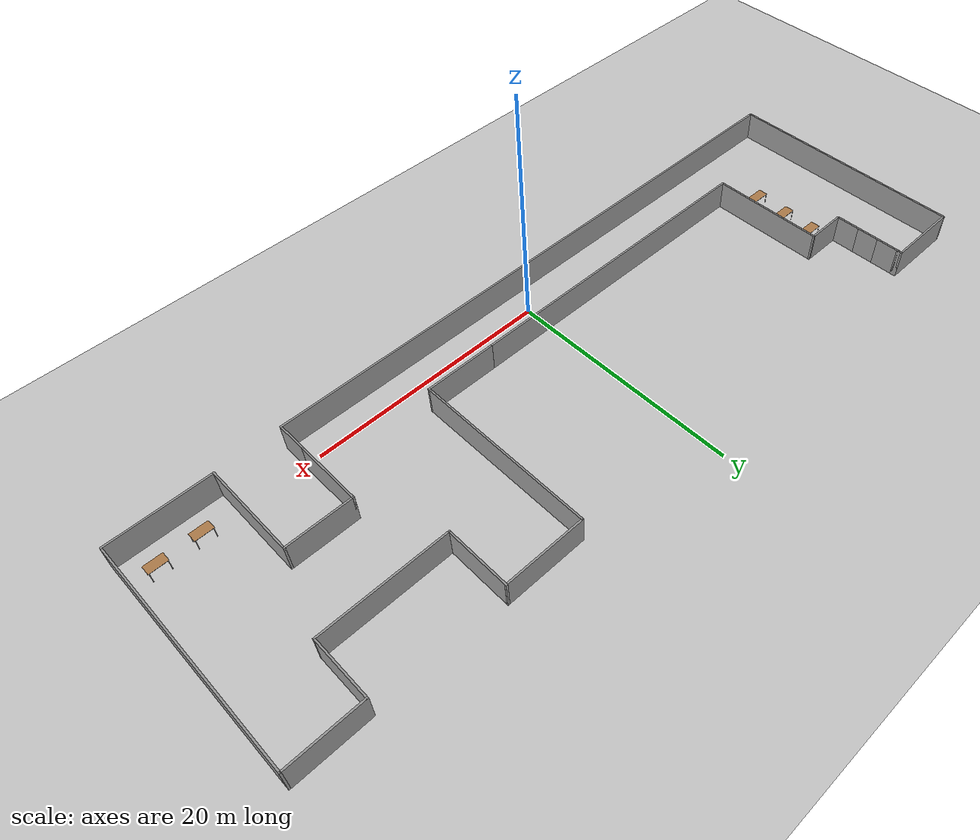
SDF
<sdf version="1.6">
 <world name="default">
  <light name="sun" type="directional">
   <pose>0 0 10 0 -0 0</pose>
   <diffuse>0.8 0.8 0.8 1</diffuse>
   <specular>0.2 0.2 0.2 1</specular>
   <attenuation>
    <range>1000</range>
    <constant>0.9</constant>
    <linear>0.01</linear>
    <quadratic>0.001</quadratic>
   </attenuation>
   <direction>-0.5 0.1 -0.9</direction>
  </light>
  <model name="ground_plane">
   <static>1</static>
   <link name="link">
    <collision name="collision">
     <geometry><plane><normal>0 0 1</normal><size>100 100</size></plane></geometry>
     <surface><friction><ode><mu>100</mu><mu2>50</mu2></ode></friction></surface>
    </collision>
    <visual name="visual">
     <cast_shadows>0</cast_shadows>
     <geometry><plane><normal>0 0 1</normal><size>100 100</size></plane></geometry>
     <material>
      <script><uri>file://media/materials/scripts/gazebo.material</uri><name>Gazebo/Grey</name></script>
     </material>
    </visual>
   </link>
  </model>
  <gravity>0 0 -9.8</gravity>
  <magnetic_field>6e-06 2.3e-05 -4.2e-05</magnetic_field>
  <atmosphere type="adiabatic"/>
  <physics name="default_physics" default="0" type="ode">
   <max_step_size>0.001</max_step_size>
   <real_time_factor>1</real_time_factor>
   <real_time_update_rate>1000</real_time_update_rate>
  </physics>
  <scene><ambient>0.4 0.4 0.4 1</ambient><background>0.7 0.7 0.7 1</background><shadows>1</shadows></scene>
  <audio><device>default</device></audio>
  <spherical_coordinates>
   <surface_model>EARTH_WGS84</surface_model>
   <latitude_deg>0</latitude_deg>
   <longitude_deg>0</longitude_deg>
   <elevation>0</elevation>
   <heading_deg>0</heading_deg>
  </spherical_coordinates>
  <model name="room">
   <pose>2.18481 8.00931 0 0 -0 0</pose>
   <link name="Wall_10">
    <collision name="Wall_10_Collision">
     <geometry><box><size>6 0.15 2.5</size></box></geometry>
     <pose>0 0 1.25 0 -0 0</pose>
    </collision>
    <visual name="Wall_10_Visual">
     <pose>0 0 1.25 0 -0 0</pose>
     <geometry><box><size>6 0.15 2.5</size></box></geometry>
     <material>
      <script><uri>file://media/materials/scripts/gazebo.material</uri><name>Gazebo/Grey</name></script>
      <ambient>1 1 1 1</ambient>
     </material>
     <meta><layer>0</layer></meta>
    </visual>
    <pose>29.475 9.525 0 0 -0 3.14159</pose>
   </link>
   <link name="Wall_11">
    <collision name="Wall_11_Collision">
     <geometry><box><size>5.25 0.15 2.5</size></box></geometry>
     <pose>0 0 1.25 0 -0 0</pose>
    </collision>
    <visual name="Wall_11_Visual">
     <pose>0 0 1.25 0 -0 0</pose>
     <geometry><box><size>5.25 0.15 2.5</size></box></geometry>
     <material>
      <script><uri>file://media/materials/scripts/gazebo.material</uri><name>Gazebo/Grey</name></script>
      <ambient>1 1 1 1</ambient>
     </material>
     <meta><layer>0</layer></meta>
    </visual>
    <pose>26.55 6.975 0 0 -0 -1.5708</pose>
   </link>
   <link name="Wall_12">
    <collision name="Wall_12_Collision">
     <geometry><box><size>10.5 0.15 2.5</size></box></geometry>
     <pose>0 0 1.25 0 -0 0</pose>
    </collision>
    <visual name="Wall_12_Visual">
     <pose>0 0 1.25 0 -0 0</pose>
     <geometry><box><size>10.5 0.15 2.5</size></box></geometry>
     <material>
      <script><uri>file://media/materials/scripts/gazebo.material</uri><name>Gazebo/Grey</name></script>
      <ambient>1 1 1 1</ambient>
     </material>
     <meta><layer>0</layer></meta>
    </visual>
    <pose>21.375 4.425 0 0 -0 3.14159</pose>
   </link>
   <link name="Wall_13">
    <collision name="Wall_13_Collision">
     <geometry><box><size>5.5 0.15 2.5</size></box></geometry>
     <pose>0 0 1.25 0 -0 0</pose>
    </collision>
    <visual name="Wall_13_Visual">
     <pose>0 0 1.25 0 -0 0</pose>
     <geometry><box><size>5.5 0.15 2.5</size></box></geometry>
     <material>
      <script><uri>file://media/materials/scripts/gazebo.material</uri><name>Gazebo/Grey</name></script>
      <ambient>1 1 1 1</ambient>
     </material>
     <meta><layer>0</layer></meta>
    </visual>
    <pose>16.2 7.1 0 0 -0 1.5708</pose>
   </link>
   <link name="Wall_14">
    <collision name="Wall_14_Collision">
     <geometry><box><size>6.75 0.15 2.5</size></box></geometry>
     <pose>0 0 1.25 0 -0 0</pose>
    </collision>
    <visual name="Wall_14_Visual">
     <pose>0 0 1.25 0 -0 0</pose>
     <geometry><box><size>6.75 0.15 2.5</size></box></geometry>
     <material>
      <script><uri>file://media/materials/scripts/gazebo.material</uri><name>Gazebo/Grey</name></script>
      <ambient>1 1 1 1</ambient>
     </material>
     <meta><layer>0</layer></meta>
    </visual>
    <pose>12.9 9.775 0 0 -0 3.14159</pose>
   </link>
   <link name="Wall_15">
    <collision name="Wall_15_Collision">
     <geometry><box><size>15.5 0.15 2.5</size></box></geometry>
     <pose>0 0 1.25 0 -0 0</pose>
    </collision>
    <visual name="Wall_15_Visual">
     <pose>0 0 1.25 0 -0 0</pose>
     <geometry><box><size>15.5 0.15 2.5</size></box></geometry>
     <material>
      <script><uri>file://media/materials/scripts/gazebo.material</uri><name>Gazebo/Grey</name></script>
      <ambient>1 1 1 1</ambient>
     </material>
     <meta><layer>0</layer></meta>
    </visual>
    <pose>9.6 2.1 0 0 -0 -1.5708</pose>
   </link>
   <link name="Wall_16">
    <collision name="Wall_16_Collision">
     <geometry><box><size>6 0.15 2.5</size></box></geometry>
     <pose>0 0 1.25 0 -0 0</pose>
    </collision>
    <visual name="Wall_16_Visual">
     <pose>0 0 1.25 0 -0 0</pose>
     <geometry><box><size>6 0.15 2.5</size></box></geometry>
     <material>
      <script><uri>file://media/materials/scripts/gazebo.material</uri><name>Gazebo/Grey</name></script>
      <ambient>1 1 1 1</ambient>
     </material>
     <meta><layer>0</layer></meta>
    </visual>
    <pose>6.675 -5.575 0 0 -0 3.14159</pose>
   </link>
   <link name="Wall_17">
    <collision name="Wall_17_Collision">
     <geometry><box><size>26.75 0.15 2.5</size></box></geometry>
     <pose>0 0 1.25 0 -0 0</pose>
    </collision>
    <visual name="Wall_17_Visual">
     <pose>0 0 1.25 0 -0 0</pose>
     <geometry><box><size>26.75 0.15 2.5</size></box></geometry>
     <material>
      <script><uri>file://media/materials/scripts/gazebo.material</uri><name>Gazebo/Grey</name></script>
      <ambient>1 1 1 1</ambient>
     </material>
     <meta><layer>0</layer></meta>
    </visual>
    <pose>-9.55 -5.575 0 0 -0 3.14159</pose>
   </link>
   <link name="Wall_18">
    <collision name="Wall_18_Collision">
     <geometry><box><size>9.75 0.15 2.5</size></box></geometry>
     <pose>0 0 1.25 0 -0 0</pose>
    </collision>
    <visual name="Wall_18_Visual">
     <pose>0 0 1.25 0 -0 0</pose>
     <geometry><box><size>9.75 0.15 2.5</size></box></geometry>
     <material>
      <script><uri>file://media/materials/scripts/gazebo.material</uri><name>Gazebo/Grey</name></script>
      <ambient>1 1 1 1</ambient>
     </material>
     <meta><layer>0</layer></meta>
    </visual>
    <pose>-22.85 -0.775 0 0 -0 1.5708</pose>
   </link>
   <link name="Wall_19">
    <collision name="Wall_19_Collision">
     <geometry><box><size>3.5 0.15 2.5</size></box></geometry>
     <pose>0 0 1.25 0 -0 0</pose>
    </collision>
    <visual name="Wall_19_Visual">
     <pose>0 0 1.25 0 -0 0</pose>
     <geometry><box><size>3.5 0.15 2.5</size></box></geometry>
     <material>
      <script><uri>file://media/materials/scripts/gazebo.material</uri><name>Gazebo/Grey</name></script>
      <ambient>1 1 1 1</ambient>
     </material>
     <meta><layer>0</layer></meta>
    </visual>
    <pose>-24.525 4.025 0 0 -0 3.14159</pose>
   </link>
   <link name="Wall_2">
    <collision name="Wall_2_Collision">
     <geometry><box><size>20.5 0.15 2.5</size></box></geometry>
     <pose>0 0 1.25 0 -0 0</pose>
    </collision>
    <visual name="Wall_2_Visual">
     <pose>0 0 1.25 0 -0 0</pose>
     <geometry><box><size>20.5 0.15 2.5</size></box></geometry>
     <material>
      <script><uri>file://media/materials/scripts/gazebo.material</uri><name>Gazebo/Grey</name></script>
      <ambient>1 1 1 1</ambient>
     </material>
     <meta><layer>0</layer></meta>
    </visual>
    <pose>-32.4 0 0 0 -0 -1.5708</pose>
   </link>
   <link name="Wall_20">
    <collision name="Wall_20_Collision">
     <geometry><box><size>2.25 0.15 2.5</size></box></geometry>
     <pose>0 0 1.25 0 -0 0</pose>
    </collision>
    <visual name="Wall_20_Visual">
     <pose>0 0 1.25 0 -0 0</pose>
     <geometry><box><size>2.25 0.15 2.5</size></box></geometry>
     <material>
      <script><uri>file://media/materials/scripts/gazebo.material</uri><name>Gazebo/Grey</name></script>
      <ambient>1 1 1 1</ambient>
     </material>
     <meta><layer>0</layer></meta>
    </visual>
    <pose>-26.2 5.075 0 0 -0 1.5708</pose>
   </link>
   <link name="Wall_21">
    <collision name="Wall_21_Collision">
     <geometry><box><size>2 0.15 2.5</size></box></geometry>
     <pose>0 0 1.25 0 -0 0</pose>
    </collision>
    <visual name="Wall_21_Visual">
     <pose>0 0 1.25 0 -0 0</pose>
     <geometry><box><size>2 0.15 2.5</size></box></geometry>
     <material>
      <script><uri>file://media/materials/scripts/gazebo.material</uri><name>Gazebo/Grey</name></script>
      <ambient>1 1 1 1</ambient>
     </material>
     <meta><layer>0</layer></meta>
    </visual>
    <pose>-26.2 7.05 0 0 -0 1.5708</pose>
   </link>
   <link name="Wall_22">
    <collision name="Wall_22_Collision">
     <geometry><box><size>2 0.15 2.5</size></box></geometry>
     <pose>0 0 1.25 0 -0 0</pose>
    </collision>
    <visual name="Wall_22_Visual">
     <pose>0 0 1.25 0 -0 0</pose>
     <geometry><box><size>2 0.15 2.5</size></box></geometry>
     <material>
      <script><uri>file://media/materials/scripts/gazebo.material</uri><name>Gazebo/Grey</name></script>
      <ambient>1 1 1 1</ambient>
     </material>
     <meta><layer>0</layer></meta>
    </visual>
    <pose>-26.2 8.9 0 0 -0 1.5708</pose>
   </link>
   <link name="Wall_23">
    <collision name="Wall_23_Collision">
     <geometry><box><size>0.5 0.15 2.5</size></box></geometry>
     <pose>0 0 1.25 0 -0 0</pose>
    </collision>
    <visual name="Wall_23_Visual">
     <pose>0 0 1.25 0 -0 0</pose>
     <geometry><box><size>0.5 0.15 2.5</size></box></geometry>
     <material>
      <script><uri>file://media/materials/scripts/gazebo.material</uri><name>Gazebo/Grey</name></script>
      <ambient>1 1 1 1</ambient>
     </material>
     <meta><layer>0</layer></meta>
    </visual>
    <pose>-26.2 10 0 0 -0 1.5708</pose>
   </link>
   <link name="Wall_24">
    <collision name="Wall_24_Collision">
     <geometry><box><size>6.35 0.15 2.5</size></box></geometry>
     <pose>0 0 1.25 0 -0 0</pose>
    </collision>
    <visual name="Wall_24_Visual">
     <pose>0 0 1.25 0 -0 0</pose>
     <geometry><box><size>6.35 0.15 2.5</size></box></geometry>
     <material>
      <script><uri>file://media/materials/scripts/gazebo.material</uri><name>Gazebo/Grey</name></script>
      <ambient>1 1 1 1</ambient>
     </material>
     <meta><layer>0</layer></meta>
    </visual>
    <pose>-29.3 10.175 0 0 -0 -3.14159</pose>
   </link>
   <link name="Wall_3">
    <collision name="Wall_3_Collision">
     <geometry><box><size>51.5 0.15 2.5</size></box></geometry>
     <pose>0 0 1.25 0 -0 0</pose>
    </collision>
    <visual name="Wall_3_Visual">
     <pose>0 0 1.25 0 -0 0</pose>
     <geometry><box><size>51.5 0.15 2.5</size></box></geometry>
     <material>
      <script><uri>file://media/materials/scripts/gazebo.material</uri><name>Gazebo/Grey</name></script>
      <ambient>1 1 1 1</ambient>
     </material>
     <meta><layer>0</layer></meta>
    </visual>
    <pose>-6.725 -10.175 0 0 -0 0</pose>
   </link>
   <link name="Wall_4">
    <collision name="Wall_4_Collision">
     <geometry><box><size>2.75 0.15 2.5</size></box></geometry>
     <pose>0 0 1.25 0 -0 0</pose>
    </collision>
    <visual name="Wall_4_Visual">
     <pose>0 0 1.25 0 -0 0</pose>
     <geometry><box><size>2.75 0.15 2.5</size></box></geometry>
     <material>
      <script><uri>file://media/materials/scripts/gazebo.material</uri><name>Gazebo/Grey</name></script>
      <ambient>1 1 1 1</ambient>
     </material>
     <meta><layer>0</layer></meta>
    </visual>
    <pose>18.95 -8.875 0 0 -0 1.5708</pose>
   </link>
   <link name="Wall_5">
    <collision name="Wall_5_Collision">
     <geometry><box><size>5.75 0.15 2.5</size></box></geometry>
     <pose>0 0 1.25 0 -0 0</pose>
    </collision>
    <visual name="Wall_5_Visual">
     <pose>0 0 1.25 0 -0 0</pose>
     <geometry><box><size>5.75 0.15 2.5</size></box></geometry>
     <material>
      <script><uri>file://media/materials/scripts/gazebo.material</uri><name>Gazebo/Grey</name></script>
      <ambient>1 1 1 1</ambient>
     </material>
     <meta><layer>0</layer></meta>
    </visual>
    <pose>18.95 -4.775 0 0 -0 1.5708</pose>
   </link>
   <link name="Wall_6">
    <collision name="Wall_6_Collision">
     <geometry><box><size>5.5 0.15 2.5</size></box></geometry>
     <pose>0 0 1.25 0 -0 0</pose>
    </collision>
    <visual name="Wall_6_Visual">
     <pose>0 0 1.25 0 -0 0</pose>
     <geometry><box><size>5.5 0.15 2.5</size></box></geometry>
     <material>
      <script><uri>file://media/materials/scripts/gazebo.material</uri><name>Gazebo/Grey</name></script>
      <ambient>1 1 1 1</ambient>
     </material>
     <meta><layer>0</layer></meta>
    </visual>
    <pose>21.625 -1.975 0 0 -0 0</pose>
   </link>
   <link name="Wall_7">
    <collision name="Wall_7_Collision">
     <geometry><box><size>8.25 0.15 2.5</size></box></geometry>
     <pose>0 0 1.25 0 -0 0</pose>
    </collision>
    <visual name="Wall_7_Visual">
     <pose>0 0 1.25 0 -0 0</pose>
     <geometry><box><size>8.25 0.15 2.5</size></box></geometry>
     <material>
      <script><uri>file://media/materials/scripts/gazebo.material</uri><name>Gazebo/Grey</name></script>
      <ambient>1 1 1 1</ambient>
     </material>
     <meta><layer>0</layer></meta>
    </visual>
    <pose>24.3 -6.025 0 0 -0 -1.5708</pose>
   </link>
   <link name="Wall_8">
    <collision name="Wall_8_Collision">
     <geometry><box><size>8.25 0.15 2.5</size></box></geometry>
     <pose>0 0 1.25 0 -0 0</pose>
    </collision>
    <visual name="Wall_8_Visual">
     <pose>0 0 1.25 0 -0 0</pose>
     <geometry><box><size>8.25 0.15 2.5</size></box></geometry>
     <material>
      <script><uri>file://media/materials/scripts/gazebo.material</uri><name>Gazebo/Grey</name></script>
      <ambient>1 1 1 1</ambient>
     </material>
     <meta><layer>0</layer></meta>
    </visual>
    <pose>28.35 -10.075 0 0 -0 0</pose>
   </link>
   <link name="Wall_9">
    <collision name="Wall_9_Collision">
     <geometry><box><size>19.75 0.15 2.5</size></box></geometry>
     <pose>0 0 1.25 0 -0 0</pose>
    </collision>
    <visual name="Wall_9_Visual">
     <pose>0 0 1.25 0 -0 0</pose>
     <geometry><box><size>19.75 0.15 2.5</size></box></geometry>
     <material>
      <script><uri>file://media/materials/scripts/gazebo.material</uri><name>Gazebo/Grey</name></script>
      <ambient>1 1 1 1</ambient>
     </material>
     <meta><layer>0</layer></meta>
    </visual>
    <pose>32.4 -0.275 0 0 -0 1.5708</pose>
   </link>
   <static>1</static>
  </model>
  <model name="table">
   <static>1</static>
   <link name="link">
    <collision name="surface">
     <pose>0 0 1 0 -0 0</pose>
     <geometry><box><size>1.5 0.8 0.03</size></box></geometry>
     <surface><friction><ode><mu>0.6</mu><mu2>0.6</mu2></ode></friction></surface>
    </collision>
    <visual name="visual1">
     <pose>0 0 1 0 -0 0</pose>
     <geometry><box><size>1.5 0.8 0.03</size></box></geometry>
     <material>
      <script><uri>file://media/materials/scripts/gazebo.material</uri><name>Gazebo/Wood</name></script>
     </material>
    </visual>
    <collision name="front_left_leg">
     <pose>0.68 0.38 0.5 0 -0 0</pose>
     <geometry><cylinder><radius>0.02</radius><length>1</length></cylinder></geometry>
    </collision>
    <visual name="front_left_leg">
     <pose>0.68 0.38 0.5 0 -0 0</pose>
     <geometry><cylinder><radius>0.02</radius><length>1</length></cylinder></geometry>
     <material>
      <script><uri>file://media/materials/scripts/gazebo.material</uri><name>Gazebo/Grey</name></script>
     </material>
    </visual>
    <collision name="front_right_leg">
     <pose>0.68 -0.38 0.5 0 -0 0</pose>
     <geometry><cylinder><radius>0.02</radius><length>1</length></cylinder></geometry>
    </collision>
    <visual name="front_right_leg">
     <pose>0.68 -0.38 0.5 0 -0 0</pose>
     <geometry><cylinder><radius>0.02</radius><length>1</length></cylinder></geometry>
     <material>
      <script><uri>file://media/materials/scripts/gazebo.material</uri><name>Gazebo/Grey</name></script>
     </material>
    </visual>
    <collision name="back_right_leg">
     <pose>-0.68 -0.38 0.5 0 -0 0</pose>
     <geometry><cylinder><radius>0.02</radius><length>1</length></cylinder></geometry>
    </collision>
    <visual name="back_right_leg">
     <pose>-0.68 -0.38 0.5 0 -0 0</pose>
     <geometry><cylinder><radius>0.02</radius><length>1</length></cylinder></geometry>
     <material>
      <script><uri>file://media/materials/scripts/gazebo.material</uri><name>Gazebo/Grey</name></script>
     </material>
    </visual>
    <collision name="back_left_leg">
     <pose>-0.68 0.38 0.5 0 -0 0</pose>
     <geometry><cylinder><radius>0.02</radius><length>1</length></cylinder></geometry>
    </collision>
    <visual name="back_left_leg">
     <pose>-0.68 0.38 0.5 0 -0 0</pose>
     <geometry><cylinder><radius>0.02</radius><length>1</length></cylinder></geometry>
     <material>
      <script><uri>file://media/materials/scripts/gazebo.material</uri><name>Gazebo/Grey</name></script>
     </material>
    </visual>
   </link>
   <pose>-22.7974 10.388 0 0 -0 0</pose>
  </model>
  <model name="table_0">
   <static>1</static>
   <link name="link">
    <collision name="surface">
     <pose>0 0 1 0 -0 0</pose>
     <geometry><box><size>1.5 0.8 0.03</size></box></geometry>
     <surface><friction><ode><mu>0.6</mu><mu2>0.6</mu2></ode></friction></surface>
    </collision>
    <visual name="visual1">
     <pose>0 0 1 0 -0 0</pose>
     <geometry><box><size>1.5 0.8 0.03</size></box></geometry>
     <material>
      <script><uri>file://media/materials/scripts/gazebo.material</uri><name>Gazebo/Wood</name></script>
     </material>
    </visual>
    <collision name="front_left_leg">
     <pose>0.68 0.38 0.5 0 -0 0</pose>
     <geometry><cylinder><radius>0.02</radius><length>1</length></cylinder></geometry>
    </collision>
    <visual name="front_left_leg">
     <pose>0.68 0.38 0.5 0 -0 0</pose>
     <geometry><cylinder><radius>0.02</radius><length>1</length></cylinder></geometry>
     <material>
      <script><uri>file://media/materials/scripts/gazebo.material</uri><name>Gazebo/Grey</name></script>
     </material>
    </visual>
    <collision name="front_right_leg">
     <pose>0.68 -0.38 0.5 0 -0 0</pose>
     <geometry><cylinder><radius>0.02</radius><length>1</length></cylinder></geometry>
    </collision>
    <visual name="front_right_leg">
     <pose>0.68 -0.38 0.5 0 -0 0</pose>
     <geometry><cylinder><radius>0.02</radius><length>1</length></cylinder></geometry>
     <material>
      <script><uri>file://media/materials/scripts/gazebo.material</uri><name>Gazebo/Grey</name></script>
     </material>
    </visual>
    <collision name="back_right_leg">
     <pose>-0.68 -0.38 0.5 0 -0 0</pose>
     <geometry><cylinder><radius>0.02</radius><length>1</length></cylinder></geometry>
    </collision>
    <visual name="back_right_leg">
     <pose>-0.68 -0.38 0.5 0 -0 0</pose>
     <geometry><cylinder><radius>0.02</radius><length>1</length></cylinder></geometry>
     <material>
      <script><uri>file://media/materials/scripts/gazebo.material</uri><name>Gazebo/Grey</name></script>
     </material>
    </visual>
    <collision name="back_left_leg">
     <pose>-0.68 0.38 0.5 0 -0 0</pose>
     <geometry><cylinder><radius>0.02</radius><length>1</length></cylinder></geometry>
    </collision>
    <visual name="back_left_leg">
     <pose>-0.68 0.38 0.5 0 -0 0</pose>
     <geometry><cylinder><radius>0.02</radius><length>1</length></cylinder></geometry>
     <material>
      <script><uri>file://media/materials/scripts/gazebo.material</uri><name>Gazebo/Grey</name></script>
     </material>
    </visual>
   </link>
   <pose>-22.8728 7.59954 0 0 -0 0</pose>
  </model>
  <model name="table_1">
   <static>1</static>
   <link name="link">
    <collision name="surface">
     <pose>0 0 1 0 -0 0</pose>
     <geometry><box><size>1.5 0.8 0.03</size></box></geometry>
     <surface><friction><ode><mu>0.6</mu><mu2>0.6</mu2></ode></friction></surface>
    </collision>
    <visual name="visual1">
     <pose>0 0 1 0 -0 0</pose>
     <geometry><box><size>1.5 0.8 0.03</size></box></geometry>
     <material>
      <script><uri>file://media/materials/scripts/gazebo.material</uri><name>Gazebo/Wood</name></script>
     </material>
    </visual>
    <collision name="front_left_leg">
     <pose>0.68 0.38 0.5 0 -0 0</pose>
     <geometry><cylinder><radius>0.02</radius><length>1</length></cylinder></geometry>
    </collision>
    <visual name="front_left_leg">
     <pose>0.68 0.38 0.5 0 -0 0</pose>
     <geometry><cylinder><radius>0.02</radius><length>1</length></cylinder></geometry>
     <material>
      <script><uri>file://media/materials/scripts/gazebo.material</uri><name>Gazebo/Grey</name></script>
     </material>
    </visual>
    <collision name="front_right_leg">
     <pose>0.68 -0.38 0.5 0 -0 0</pose>
     <geometry><cylinder><radius>0.02</radius><length>1</length></cylinder></geometry>
    </collision>
    <visual name="front_right_leg">
     <pose>0.68 -0.38 0.5 0 -0 0</pose>
     <geometry><cylinder><radius>0.02</radius><length>1</length></cylinder></geometry>
     <material>
      <script><uri>file://media/materials/scripts/gazebo.material</uri><name>Gazebo/Grey</name></script>
     </material>
    </visual>
    <collision name="back_right_leg">
     <pose>-0.68 -0.38 0.5 0 -0 0</pose>
     <geometry><cylinder><radius>0.02</radius><length>1</length></cylinder></geometry>
    </collision>
    <visual name="back_right_leg">
     <pose>-0.68 -0.38 0.5 0 -0 0</pose>
     <geometry><cylinder><radius>0.02</radius><length>1</length></cylinder></geometry>
     <material>
      <script><uri>file://media/materials/scripts/gazebo.material</uri><name>Gazebo/Grey</name></script>
     </material>
    </visual>
    <collision name="back_left_leg">
     <pose>-0.68 0.38 0.5 0 -0 0</pose>
     <geometry><cylinder><radius>0.02</radius><length>1</length></cylinder></geometry>
    </collision>
    <visual name="back_left_leg">
     <pose>-0.68 0.38 0.5 0 -0 0</pose>
     <geometry><cylinder><radius>0.02</radius><length>1</length></cylinder></geometry>
     <material>
      <script><uri>file://media/materials/scripts/gazebo.material</uri><name>Gazebo/Grey</name></script>
     </material>
    </visual>
   </link>
   <pose>-23.0227 4.62768 0 0 -0 0</pose>
  </model>
  <model name="table_2">
   <static>1</static>
   <link name="link">
    <collision name="surface">
     <pose>0 0 1 0 -0 0</pose>
     <geometry><box><size>1.5 0.8 0.03</size></box></geometry>
     <surface><friction><ode><mu>0.6</mu><mu2>0.6</mu2></ode></friction></surface>
    </collision>
    <visual name="visual1">
     <pose>0 0 1 0 -0 0</pose>
     <geometry><box><size>1.5 0.8 0.03</size></box></geometry>
     <material>
      <script><uri>file://media/materials/scripts/gazebo.material</uri><name>Gazebo/Wood</name></script>
     </material>
    </visual>
    <collision name="front_left_leg">
     <pose>0.68 0.38 0.5 0 -0 0</pose>
     <geometry><cylinder><radius>0.02</radius><length>1</length></cylinder></geometry>
    </collision>
    <visual name="front_left_leg">
     <pose>0.68 0.38 0.5 0 -0 0</pose>
     <geometry><cylinder><radius>0.02</radius><length>1</length></cylinder></geometry>
     <material>
      <script><uri>file://media/materials/scripts/gazebo.material</uri><name>Gazebo/Grey</name></script>
     </material>
    </visual>
    <collision name="front_right_leg">
     <pose>0.68 -0.38 0.5 0 -0 0</pose>
     <geometry><cylinder><radius>0.02</radius><length>1</length></cylinder></geometry>
    </collision>
    <visual name="front_right_leg">
     <pose>0.68 -0.38 0.5 0 -0 0</pose>
     <geometry><cylinder><radius>0.02</radius><length>1</length></cylinder></geometry>
     <material>
      <script><uri>file://media/materials/scripts/gazebo.material</uri><name>Gazebo/Grey</name></script>
     </material>
    </visual>
    <collision name="back_right_leg">
     <pose>-0.68 -0.38 0.5 0 -0 0</pose>
     <geometry><cylinder><radius>0.02</radius><length>1</length></cylinder></geometry>
    </collision>
    <visual name="back_right_leg">
     <pose>-0.68 -0.38 0.5 0 -0 0</pose>
     <geometry><cylinder><radius>0.02</radius><length>1</length></cylinder></geometry>
     <material>
      <script><uri>file://media/materials/scripts/gazebo.material</uri><name>Gazebo/Grey</name></script>
     </material>
    </visual>
    <collision name="back_left_leg">
     <pose>-0.68 0.38 0.5 0 -0 0</pose>
     <geometry><cylinder><radius>0.02</radius><length>1</length></cylinder></geometry>
    </collision>
    <visual name="back_left_leg">
     <pose>-0.68 0.38 0.5 0 -0 0</pose>
     <geometry><cylinder><radius>0.02</radius><length>1</length></cylinder></geometry>
     <material>
      <script><uri>file://media/materials/scripts/gazebo.material</uri><name>Gazebo/Grey</name></script>
     </material>
    </visual>
   </link>
   <pose>29.2574 0.194933 0 0 -0 0</pose>
  </model>
  <model name="table_3">
   <static>1</static>
   <link name="link">
    <collision name="surface">
     <pose>0 0 1 0 -0 0</pose>
     <geometry><box><size>1.5 0.8 0.03</size></box></geometry>
     <surface><friction><ode><mu>0.6</mu><mu2>0.6</mu2></ode></friction></surface>
    </collision>
    <visual name="visual1">
     <pose>0 0 1 0 -0 0</pose>
     <geometry><box><size>1.5 0.8 0.03</size></box></geometry>
     <material>
      <script><uri>file://media/materials/scripts/gazebo.material</uri><name>Gazebo/Wood</name></script>
     </material>
    </visual>
    <collision name="front_left_leg">
     <pose>0.68 0.38 0.5 0 -0 0</pose>
     <geometry><cylinder><radius>0.02</radius><length>1</length></cylinder></geometry>
    </collision>
    <visual name="front_left_leg">
     <pose>0.68 0.38 0.5 0 -0 0</pose>
     <geometry><cylinder><radius>0.02</radius><length>1</length></cylinder></geometry>
     <material>
      <script><uri>file://media/materials/scripts/gazebo.material</uri><name>Gazebo/Grey</name></script>
     </material>
    </visual>
    <collision name="front_right_leg">
     <pose>0.68 -0.38 0.5 0 -0 0</pose>
     <geometry><cylinder><radius>0.02</radius><length>1</length></cylinder></geometry>
    </collision>
    <visual name="front_right_leg">
     <pose>0.68 -0.38 0.5 0 -0 0</pose>
     <geometry><cylinder><radius>0.02</radius><length>1</length></cylinder></geometry>
     <material>
      <script><uri>file://media/materials/scripts/gazebo.material</uri><name>Gazebo/Grey</name></script>
     </material>
    </visual>
    <collision name="back_right_leg">
     <pose>-0.68 -0.38 0.5 0 -0 0</pose>
     <geometry><cylinder><radius>0.02</radius><length>1</length></cylinder></geometry>
    </collision>
    <visual name="back_right_leg">
     <pose>-0.68 -0.38 0.5 0 -0 0</pose>
     <geometry><cylinder><radius>0.02</radius><length>1</length></cylinder></geometry>
     <material>
      <script><uri>file://media/materials/scripts/gazebo.material</uri><name>Gazebo/Grey</name></script>
     </material>
    </visual>
    <collision name="back_left_leg">
     <pose>-0.68 0.38 0.5 0 -0 0</pose>
     <geometry><cylinder><radius>0.02</radius><length>1</length></cylinder></geometry>
    </collision>
    <visual name="back_left_leg">
     <pose>-0.68 0.38 0.5 0 -0 0</pose>
     <geometry><cylinder><radius>0.02</radius><length>1</length></cylinder></geometry>
     <material>
      <script><uri>file://media/materials/scripts/gazebo.material</uri><name>Gazebo/Grey</name></script>
     </material>
    </visual>
   </link>
   <pose>32.6109 0.251508 0 0 -0 0</pose>
  </model>
 </world>
</sdf>
